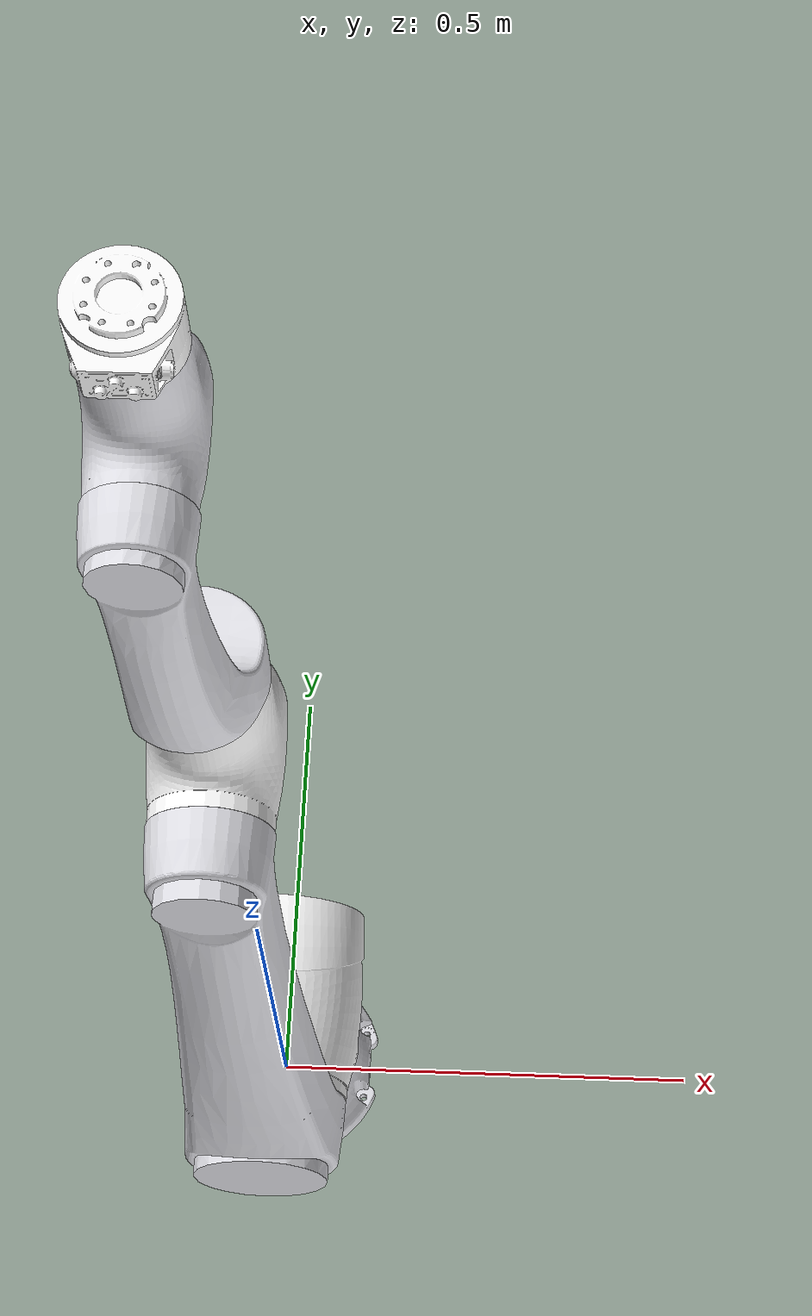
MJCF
<?xml version='1.0' encoding='utf-8'?>
<mujoco model="elfin15">
  <compiler angle="radian" />
  <asset>
    <mesh name="elfin_base" file="elfin_base.STL" />
    <mesh name="elfin_link1" file="elfin_link1.STL" />
    <mesh name="elfin_link2" file="elfin_link2.STL" />
    <mesh name="elfin_link3" file="elfin_link3.STL" />
    <mesh name="elfin_link4" file="elfin_link4.STL" />
    <mesh name="elfin_link5" file="elfin_link5.STL" />
    <mesh name="elfin_link6" file="elfin_link6.STL" />
  </asset>
  <worldbody>
    <geom type="mesh" rgba="0.866667 0.866667 0.890196 1" mesh="elfin_base" />
    <body name="elfin_link1" pos="0 0 0.262">
      <inertial pos="-1.88838e-06 -0.00357535 -0.0358732" quat="0.998738 0.0502277 4.92096e-05 -7.54994e-05" mass="26.1753" diaginertia="0.235853 0.212365 0.1579" />
      <joint name="elfin_joint1" pos="0 0 0" axis="0 0 1" range="-3.14 3.14" actuatorfrcrange="-104 104" />
      <geom type="mesh" rgba="1 1 1 1" mesh="elfin_link1" />
      <body name="elfin_link2" quat="0.707105 0.707108 0 0">
        <inertial pos="2.05933e-05 0.292081 0.154042" quat="0.513249 0.485908 -0.486417 0.513681" mass="25.7827" diaginertia="1.61404 1.59116 0.0559177" />
        <joint name="elfin_joint2" pos="0 0 0" axis="0 0 1" range="-2.35 2.35" actuatorfrcrange="-104 104" />
        <geom type="mesh" rgba="0.890196 0.890196 0.913725 1" mesh="elfin_link2" />
        <body name="elfin_link3" pos="0 0.73 0" quat="-2.59734e-06 0.707105 0.707108 -2.59735e-06">
          <inertial pos="0.0361013 -2.09104e-06 -0.00436987" quat="0.529158 0.469078 0.469085 0.529072" mass="7.87585" diaginertia="0.036645 0.0320625 0.019885" />
          <joint name="elfin_joint3" pos="0 0 0" axis="0 0 1" range="-2.61 2.61" actuatorfrcrange="-69 69" />
          <geom type="mesh" rgba="1 1 1 1" mesh="elfin_link3" />
          <body name="elfin_link4" quat="0.499998 0.5 0.500002 0.5">
            <inertial pos="3.69862e-05 -0.0650226 0.320849" quat="0.992592 0.121493 0.000259111 -0.000578748" mass="7.61388" diaginertia="0.16194 0.159247 0.0128573" />
            <joint name="elfin_joint4" pos="0 0 0" axis="0 0 1" range="-3.14 3.14" actuatorfrcrange="-69 69" />
            <geom type="mesh" rgba="0.890196 0.890196 0.913725 1" mesh="elfin_link4" />
            <body name="elfin_link5" pos="0 0 0.57" quat="0.707105 -0.707108 0 0">
              <inertial pos="6.77522e-06 -0.0250232 -0.002491" quat="0.754143 0.656711 0.00028124 -0.000151073" mass="3.39285" diaginertia="0.00944879 0.00740998 0.00543183" />
              <joint name="elfin_joint5" pos="0 0 0" axis="0 0 1" range="-2.56 2.56" actuatorfrcrange="-34 34" />
              <geom type="mesh" rgba="0.890196 0.890196 0.913725 1" mesh="elfin_link5" />
              <body name="elfin_link6" quat="0.707105 0.707108 0 0">
                <inertial pos="6.22099e-05 -0.00431405 0.139458" quat="0.506404 0.493377 -0.485637 0.514093" mass="0.352384" diaginertia="0.000345682 0.000280644 0.000240015" />
                <joint name="elfin_joint6" pos="0 0 0" axis="0 0 1" range="-3.14 3.14" actuatorfrcrange="-34 34" />
                <geom type="mesh" rgba="1 1 1 1" mesh="elfin_link6" />
              </body>
            </body>
          </body>
        </body>
      </body>
    </body>
  </worldbody>
  <actuator>
    <general name="elfin_joint1_actuator" joint="elfin_joint1" gainprm="1" ctrlrange="-3.14 3.14" />
    <general name="elfin_joint2_actuator" joint="elfin_joint2" gainprm="1" ctrlrange="-3.14 3.14" />
    <general name="elfin_joint3_actuator" joint="elfin_joint3" gainprm="1" ctrlrange="-3.14 3.14" />
    <general name="elfin_joint4_actuator" joint="elfin_joint4" gainprm="1" ctrlrange="-3.14 3.14" />
    <general name="elfin_joint5_actuator" joint="elfin_joint5" gainprm="1" ctrlrange="-3.14 3.14" />
    <general name="elfin_joint6_actuator" joint="elfin_joint6" gainprm="1" ctrlrange="-3.14 3.14" />
  </actuator>
  <keyframe>
    <key name="home" qpos="0 -0.785 1.57 0.785 1.57 0." ctrl="0 -0.785 1.57 0.785 1.57 0"/>
  </keyframe>
</mujoco>
